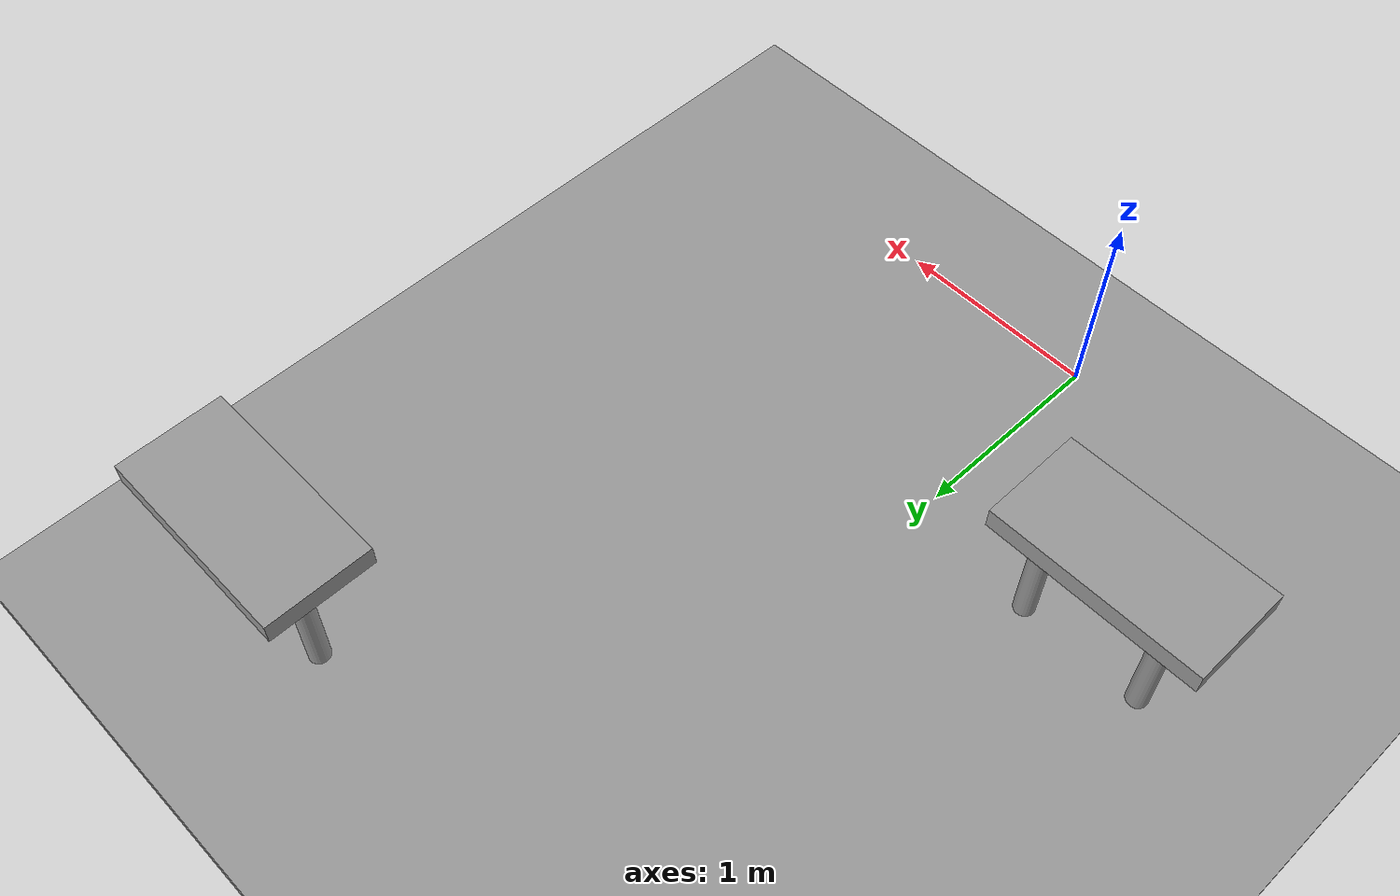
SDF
<sdf version="1.6">
 <world name="default">
  <model name="ground_plane">
   <static>1</static>
   <link name="link">
    <collision name="collision">
     <geometry><plane><normal>0 0 1</normal><size>100 100</size></plane></geometry>
     <surface><friction><ode><mu>100</mu><mu2>50</mu2></ode></friction></surface>
    </collision>
    <visual name="visual">
     <cast_shadows>0</cast_shadows>
     <geometry><plane><normal>0 0 1</normal><size>100 100</size></plane></geometry>
     <material>
      <script><uri>file://media/materials/scripts/gazebo.material</uri><name>Gazebo/Grey</name></script>
     </material>
    </visual>
   </link>
  </model>
  <model name="ground_plane_0">
   <static>1</static>
   <link name="link">
    <collision name="collision">
     <geometry><plane><normal>0 0 1</normal><size>100 100</size></plane></geometry>
     <surface>
      <contact><collide_bitmask>65535</collide_bitmask></contact>
      <friction><ode><mu>100</mu><mu2>50</mu2></ode></friction>
     </surface>
    </collision>
    <visual name="visual">
     <cast_shadows>0</cast_shadows>
     <geometry><plane><normal>0 0 1</normal><size>100 100</size></plane></geometry>
     <material>
      <script><uri>file://media/materials/scripts/gazebo.material</uri><name>Gazebo/Grey</name></script>
     </material>
    </visual>
   </link>
   <pose>-0.077323 7.30628 0 0 -0 0</pose>
  </model>
  <model name="humanoid">
   <link name="link_5">
    <pose>-0.033333 0 0.3 0 -0 0</pose>
    <inertial>
     <mass>1</mass>
     <inertia>
      <ixx>0.166667</ixx>
      <ixy>0</ixy>
      <ixz>0</ixz>
      <iyy>0.166667</iyy>
      <iyz>0</iyz>
      <izz>0.166667</izz>
     </inertia>
    </inertial>
    <visual name="visual">
     <geometry><box><size>1 0.5 0.1</size></box></geometry>
     <material>
      <lighting>1</lighting>
      <script><uri>file://media/materials/scripts/gazebo.material</uri><name>Gazebo/Grey</name></script>
      <shader type="pixel"><normal_map>__default__</normal_map></shader>
      <ambient>0.3 0.3 0.3 1</ambient>
      <diffuse>0.7 0.7 0.7 1</diffuse>
      <specular>0.01 0.01 0.01 1</specular>
      <emissive>0 0 0 1</emissive>
     </material>
    </visual>
    <collision name="collision">
     <geometry><box><size>1 0.5 0.1</size></box></geometry>
     <surface>
      <friction>
       <ode><mu>1</mu><mu2>1</mu2><fdir1>0 0 0</fdir1><slip1>0</slip1><slip2>0</slip2></ode>
       <torsional>
        <coefficient>1</coefficient>
        <patch_radius>0</patch_radius>
        <surface_radius>0</surface_radius>
        <use_patch_radius>1</use_patch_radius>
        <ode><slip>0</slip></ode>
       </torsional>
      </friction>
      <bounce><restitution_coefficient>0</restitution_coefficient><threshold>1e+06</threshold></bounce>
      <contact>
       <collide_without_contact>0</collide_without_contact>
       <collide_without_contact_bitmask>1</collide_without_contact_bitmask>
       <collide_bitmask>1</collide_bitmask>
       <ode>
        <soft_cfm>0</soft_cfm>
        <soft_erp>0.2</soft_erp>
        <kp>1e+13</kp>
        <kd>1</kd>
        <max_vel>0.01</max_vel>
        <min_depth>0</min_depth>
       </ode>
       <bullet>
        <split_impulse>1</split_impulse>
        <split_impulse_penetration_threshold>-0.01</split_impulse_penetration_threshold>
        <soft_cfm>0</soft_cfm>
        <soft_erp>0.2</soft_erp>
        <kp>1e+13</kp>
        <kd>1</kd>
       </bullet>
      </contact>
     </surface>
    </collision>
   </link>
   <link name="link_6">
    <pose>0.316667 0 -0.15 0 -0 0</pose>
    <inertial>
     <mass>1</mass>
     <inertia><ixx>0.145833</ixx><ixy>0</ixy><ixz>0</ixz><iyy>0.145833</iyy><iyz>0</iyz><izz>0.125</izz></inertia>
    </inertial>
    <visual name="visual">
     <geometry><cylinder><radius>0.05</radius><length>0.8</length></cylinder></geometry>
     <material>
      <lighting>1</lighting>
      <script><uri>file://media/materials/scripts/gazebo.material</uri><name>Gazebo/Grey</name></script>
      <shader type="pixel"><normal_map>__default__</normal_map></shader>
      <ambient>0.3 0.3 0.3 1</ambient>
      <diffuse>0.7 0.7 0.7 1</diffuse>
      <specular>0.01 0.01 0.01 1</specular>
      <emissive>0 0 0 1</emissive>
     </material>
    </visual>
    <collision name="collision">
     <geometry><cylinder><radius>0.05</radius><length>0.8</length></cylinder></geometry>
     <surface>
      <friction>
       <ode><mu>1</mu><mu2>1</mu2><fdir1>0 0 0</fdir1><slip1>0</slip1><slip2>0</slip2></ode>
       <torsional>
        <coefficient>1</coefficient>
        <patch_radius>0</patch_radius>
        <surface_radius>0</surface_radius>
        <use_patch_radius>1</use_patch_radius>
        <ode><slip>0</slip></ode>
       </torsional>
      </friction>
      <bounce><restitution_coefficient>0</restitution_coefficient><threshold>1e+06</threshold></bounce>
      <contact>
       <collide_without_contact>0</collide_without_contact>
       <collide_without_contact_bitmask>1</collide_without_contact_bitmask>
       <collide_bitmask>1</collide_bitmask>
       <ode>
        <soft_cfm>0</soft_cfm>
        <soft_erp>0.2</soft_erp>
        <kp>1e+13</kp>
        <kd>1</kd>
        <max_vel>0.01</max_vel>
        <min_depth>0</min_depth>
       </ode>
       <bullet>
        <split_impulse>1</split_impulse>
        <split_impulse_penetration_threshold>-0.01</split_impulse_penetration_threshold>
        <soft_cfm>0</soft_cfm>
        <soft_erp>0.2</soft_erp>
        <kp>1e+13</kp>
        <kd>1</kd>
       </bullet>
      </contact>
     </surface>
    </collision>
   </link>
   <link name="link_7">
    <pose>-0.283333 0 -0.15 0 -0 0</pose>
    <inertial>
     <mass>1</mass>
     <inertia><ixx>0.145833</ixx><ixy>0</ixy><ixz>0</ixz><iyy>0.145833</iyy><iyz>0</iyz><izz>0.125</izz></inertia>
    </inertial>
    <visual name="visual">
     <geometry><cylinder><radius>0.05</radius><length>0.8</length></cylinder></geometry>
     <material>
      <lighting>1</lighting>
      <script><uri>file://media/materials/scripts/gazebo.material</uri><name>Gazebo/Grey</name></script>
      <shader type="pixel"><normal_map>__default__</normal_map></shader>
      <ambient>0.3 0.3 0.3 1</ambient>
      <diffuse>0.7 0.7 0.7 1</diffuse>
      <specular>0.01 0.01 0.01 1</specular>
      <emissive>0 0 0 1</emissive>
     </material>
    </visual>
    <collision name="collision">
     <geometry><cylinder><radius>0.05</radius><length>0.8</length></cylinder></geometry>
     <surface>
      <friction>
       <ode><mu>1</mu><mu2>1</mu2><fdir1>0 0 0</fdir1><slip1>0</slip1><slip2>0</slip2></ode>
       <torsional>
        <coefficient>1</coefficient>
        <patch_radius>0</patch_radius>
        <surface_radius>0</surface_radius>
        <use_patch_radius>1</use_patch_radius>
        <ode><slip>0</slip></ode>
       </torsional>
      </friction>
      <bounce><restitution_coefficient>0</restitution_coefficient><threshold>1e+06</threshold></bounce>
      <contact>
       <collide_without_contact>0</collide_without_contact>
       <collide_without_contact_bitmask>1</collide_without_contact_bitmask>
       <collide_bitmask>1</collide_bitmask>
       <ode>
        <soft_cfm>0</soft_cfm>
        <soft_erp>0.2</soft_erp>
        <kp>1e+13</kp>
        <kd>1</kd>
        <max_vel>0.01</max_vel>
        <min_depth>0</min_depth>
       </ode>
       <bullet>
        <split_impulse>1</split_impulse>
        <split_impulse_penetration_threshold>-0.01</split_impulse_penetration_threshold>
        <soft_cfm>0</soft_cfm>
        <soft_erp>0.2</soft_erp>
        <kp>1e+13</kp>
        <kd>1</kd>
       </bullet>
      </contact>
     </surface>
    </collision>
   </link>
   <joint name="link_5_JOINT_4" type="fixed">
    <parent>link_5</parent>
    <child>link_7</child>
    <physics>
     <ode><limit><cfm>0</cfm><erp>0.2</erp></limit><suspension><cfm>0</cfm><erp>0.2</erp></suspension></ode>
    </physics>
   </joint>
   <joint name="link_5_JOINT_5" type="fixed">
    <parent>link_5</parent>
    <child>link_6</child>
    <physics>
     <ode><limit><cfm>0</cfm><erp>0.2</erp></limit><suspension><cfm>0</cfm><erp>0.2</erp></suspension></ode>
    </physics>
   </joint>
   <static>0</static>
   <pose>1.53374 3.5 0.549999 -1e-06 -0 0.000328</pose>
  </model>
  <model name="humanoid_0">
   <link name="link_5">
    <pose>-0.033333 0 0.3 0 -0 0</pose>
    <inertial>
     <mass>1</mass>
     <inertia>
      <ixx>0.166667</ixx>
      <ixy>0</ixy>
      <ixz>0</ixz>
      <iyy>0.166667</iyy>
      <iyz>0</iyz>
      <izz>0.166667</izz>
     </inertia>
    </inertial>
    <visual name="visual">
     <geometry><box><size>1 0.5 0.1</size></box></geometry>
     <material>
      <lighting>1</lighting>
      <script><uri>file://media/materials/scripts/gazebo.material</uri><name>Gazebo/Grey</name></script>
      <shader type="pixel"><normal_map>__default__</normal_map></shader>
      <ambient>0.3 0.3 0.3 1</ambient>
      <diffuse>0.7 0.7 0.7 1</diffuse>
      <specular>0.01 0.01 0.01 1</specular>
      <emissive>0 0 0 1</emissive>
     </material>
    </visual>
    <collision name="collision">
     <geometry><box><size>1 0.5 0.1</size></box></geometry>
     <surface>
      <friction>
       <ode><mu>1</mu><mu2>1</mu2><fdir1>0 0 0</fdir1><slip1>0</slip1><slip2>0</slip2></ode>
       <torsional>
        <coefficient>1</coefficient>
        <patch_radius>0</patch_radius>
        <surface_radius>0</surface_radius>
        <use_patch_radius>1</use_patch_radius>
        <ode><slip>0</slip></ode>
       </torsional>
      </friction>
      <bounce><restitution_coefficient>0</restitution_coefficient><threshold>1e+06</threshold></bounce>
      <contact>
       <collide_without_contact>0</collide_without_contact>
       <collide_without_contact_bitmask>1</collide_without_contact_bitmask>
       <collide_bitmask>1</collide_bitmask>
       <ode>
        <soft_cfm>0</soft_cfm>
        <soft_erp>0.2</soft_erp>
        <kp>1e+13</kp>
        <kd>1</kd>
        <max_vel>0.01</max_vel>
        <min_depth>0</min_depth>
       </ode>
       <bullet>
        <split_impulse>1</split_impulse>
        <split_impulse_penetration_threshold>-0.01</split_impulse_penetration_threshold>
        <soft_cfm>0</soft_cfm>
        <soft_erp>0.2</soft_erp>
        <kp>1e+13</kp>
        <kd>1</kd>
       </bullet>
      </contact>
     </surface>
    </collision>
   </link>
   <link name="link_6">
    <pose>0.316667 0 -0.15 0 -0 0</pose>
    <inertial>
     <mass>1</mass>
     <inertia><ixx>0.145833</ixx><ixy>0</ixy><ixz>0</ixz><iyy>0.145833</iyy><iyz>0</iyz><izz>0.125</izz></inertia>
    </inertial>
    <visual name="visual">
     <geometry><cylinder><radius>0.05</radius><length>0.8</length></cylinder></geometry>
     <material>
      <lighting>1</lighting>
      <script><uri>file://media/materials/scripts/gazebo.material</uri><name>Gazebo/Grey</name></script>
      <shader type="pixel"><normal_map>__default__</normal_map></shader>
      <ambient>0.3 0.3 0.3 1</ambient>
      <diffuse>0.7 0.7 0.7 1</diffuse>
      <specular>0.01 0.01 0.01 1</specular>
      <emissive>0 0 0 1</emissive>
     </material>
    </visual>
    <collision name="collision">
     <geometry><cylinder><radius>0.05</radius><length>0.8</length></cylinder></geometry>
     <surface>
      <friction>
       <ode><mu>1</mu><mu2>1</mu2><fdir1>0 0 0</fdir1><slip1>0</slip1><slip2>0</slip2></ode>
       <torsional>
        <coefficient>1</coefficient>
        <patch_radius>0</patch_radius>
        <surface_radius>0</surface_radius>
        <use_patch_radius>1</use_patch_radius>
        <ode><slip>0</slip></ode>
       </torsional>
      </friction>
      <bounce><restitution_coefficient>0</restitution_coefficient><threshold>1e+06</threshold></bounce>
      <contact>
       <collide_without_contact>0</collide_without_contact>
       <collide_without_contact_bitmask>1</collide_without_contact_bitmask>
       <collide_bitmask>1</collide_bitmask>
       <ode>
        <soft_cfm>0</soft_cfm>
        <soft_erp>0.2</soft_erp>
        <kp>1e+13</kp>
        <kd>1</kd>
        <max_vel>0.01</max_vel>
        <min_depth>0</min_depth>
       </ode>
       <bullet>
        <split_impulse>1</split_impulse>
        <split_impulse_penetration_threshold>-0.01</split_impulse_penetration_threshold>
        <soft_cfm>0</soft_cfm>
        <soft_erp>0.2</soft_erp>
        <kp>1e+13</kp>
        <kd>1</kd>
       </bullet>
      </contact>
     </surface>
    </collision>
   </link>
   <link name="link_7">
    <pose>-0.283333 0 -0.15 0 -0 0</pose>
    <inertial>
     <mass>1</mass>
     <inertia><ixx>0.145833</ixx><ixy>0</ixy><ixz>0</ixz><iyy>0.145833</iyy><iyz>0</iyz><izz>0.125</izz></inertia>
    </inertial>
    <visual name="visual">
     <geometry><cylinder><radius>0.05</radius><length>0.8</length></cylinder></geometry>
     <material>
      <lighting>1</lighting>
      <script><uri>file://media/materials/scripts/gazebo.material</uri><name>Gazebo/Grey</name></script>
      <shader type="pixel"><normal_map>__default__</normal_map></shader>
      <ambient>0.3 0.3 0.3 1</ambient>
      <diffuse>0.7 0.7 0.7 1</diffuse>
      <specular>0.01 0.01 0.01 1</specular>
      <emissive>0 0 0 1</emissive>
     </material>
    </visual>
    <collision name="collision">
     <geometry><cylinder><radius>0.05</radius><length>0.8</length></cylinder></geometry>
     <surface>
      <friction>
       <ode><mu>1</mu><mu2>1</mu2><fdir1>0 0 0</fdir1><slip1>0</slip1><slip2>0</slip2></ode>
       <torsional>
        <coefficient>1</coefficient>
        <patch_radius>0</patch_radius>
        <surface_radius>0</surface_radius>
        <use_patch_radius>1</use_patch_radius>
        <ode><slip>0</slip></ode>
       </torsional>
      </friction>
      <bounce><restitution_coefficient>0</restitution_coefficient><threshold>1e+06</threshold></bounce>
      <contact>
       <collide_without_contact>0</collide_without_contact>
       <collide_without_contact_bitmask>1</collide_without_contact_bitmask>
       <collide_bitmask>1</collide_bitmask>
       <ode>
        <soft_cfm>0</soft_cfm>
        <soft_erp>0.2</soft_erp>
        <kp>1e+13</kp>
        <kd>1</kd>
        <max_vel>0.01</max_vel>
        <min_depth>0</min_depth>
       </ode>
       <bullet>
        <split_impulse>1</split_impulse>
        <split_impulse_penetration_threshold>-0.01</split_impulse_penetration_threshold>
        <soft_cfm>0</soft_cfm>
        <soft_erp>0.2</soft_erp>
        <kp>1e+13</kp>
        <kd>1</kd>
       </bullet>
      </contact>
     </surface>
    </collision>
   </link>
   <joint name="link_5_JOINT_4" type="fixed">
    <parent>link_5</parent>
    <child>link_7</child>
    <physics>
     <ode><limit><cfm>0</cfm><erp>0.2</erp></limit><suspension><cfm>0</cfm><erp>0.2</erp></suspension></ode>
    </physics>
   </joint>
   <joint name="link_5_JOINT_5" type="fixed">
    <parent>link_5</parent>
    <child>link_6</child>
    <physics>
     <ode><limit><cfm>0</cfm><erp>0.2</erp></limit><suspension><cfm>0</cfm><erp>0.2</erp></suspension></ode>
    </physics>
   </joint>
   <static>0</static>
   <pose>-0.964019 1.18216 0.55 0 -0 0.000102</pose>
  </model>
 </world>
</sdf>
